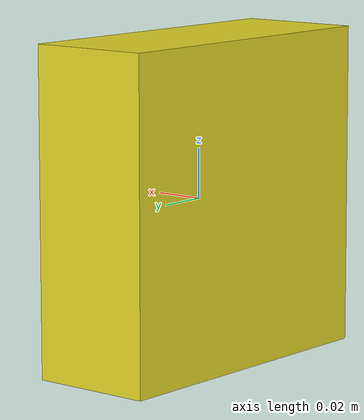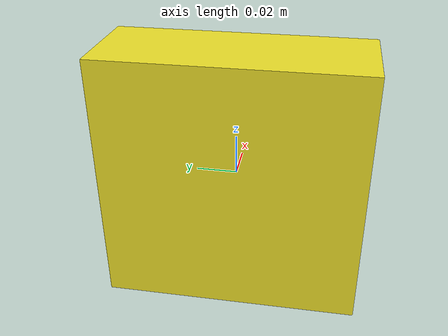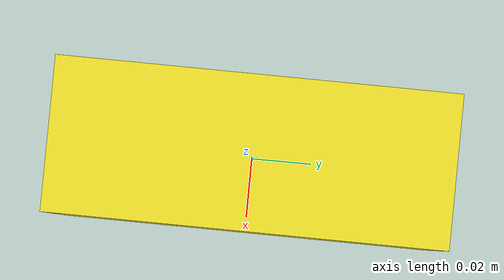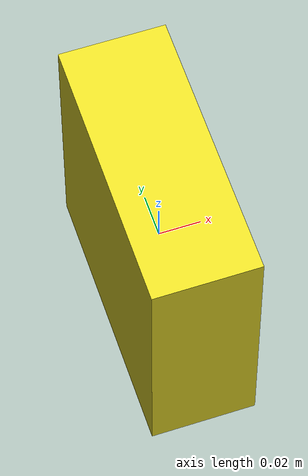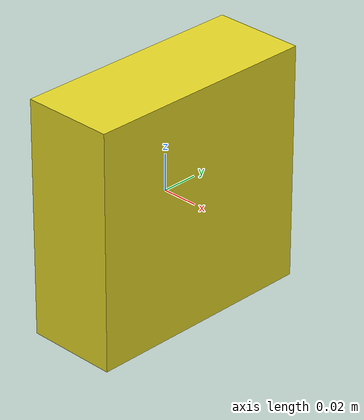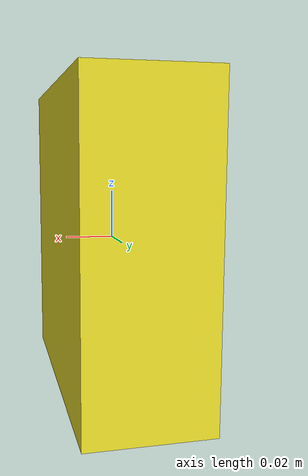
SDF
<?xml version='1.0'?>
<sdf version="1.4">
<model name="card_holder">
  <static>true</static>
    <static>true</static>
    <link name="link">
      <collision name="collision_card_holder">
        <geometry>
          <box>
            <size>0.05 0.13 0.13</size>
          </box>
        </geometry>
      </collision>
      <visual name="visual_card_holder">
        <geometry>
          <box>
            <size>0.05 0.13 0.13</size>
          </box>
        </geometry>
        <material>
          <script>
            <uri>file://media/materials/scripts/gazebo.material</uri>
            <name>Gazebo/Yellow</name>
          </script>
        </material>
      </visual>
    </link>
  </model>
</sdf>
